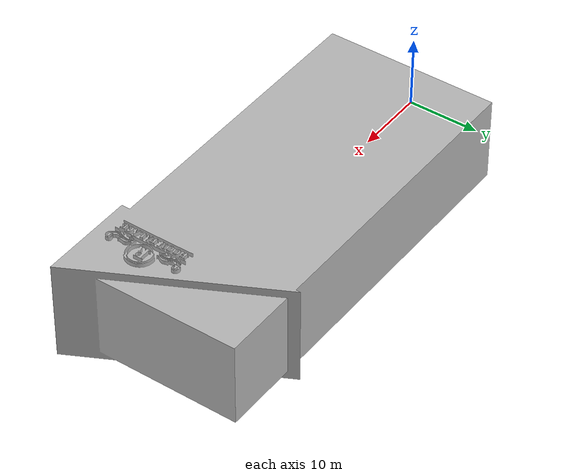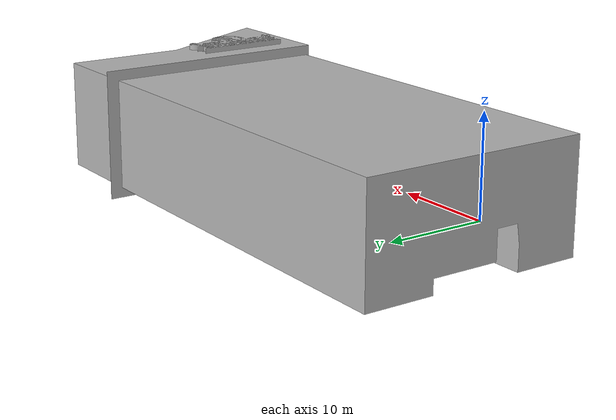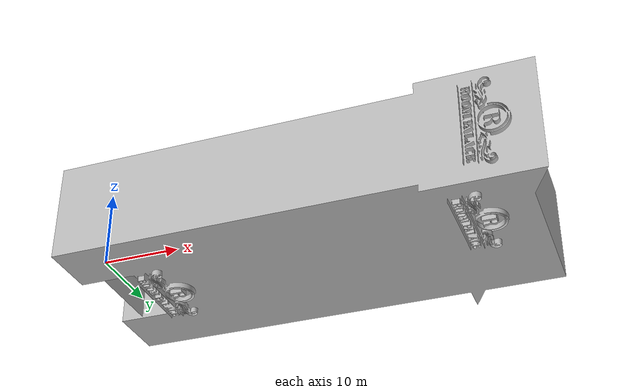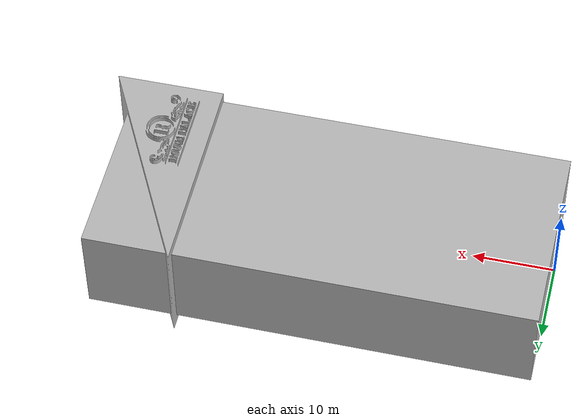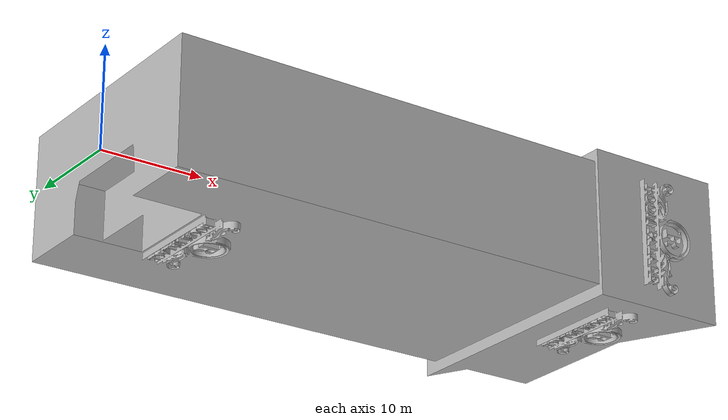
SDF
<?xml version="1.0" ?>
<sdf version="1.6">
  <model name="palace">
    <static>true</static>
    <link name="link">
      <collision name="collision">
        <pose>0 0 0 0 0 -1.57079632679</pose>
        <geometry>
          <mesh>
            <scale>1 1 1</scale>
            <uri>meshes/palace.obj</uri>
          </mesh>
        </geometry>
      </collision>
      <visual name="visual">
        <pose>0 0 0 0 0 -1.57079632679</pose>
        <geometry>
          <mesh>
            <scale>1 1 1</scale>
            <uri>meshes/palace.obj</uri>
          </mesh>
        </geometry>
      </visual>
    </link>
  </model>
</sdf>
